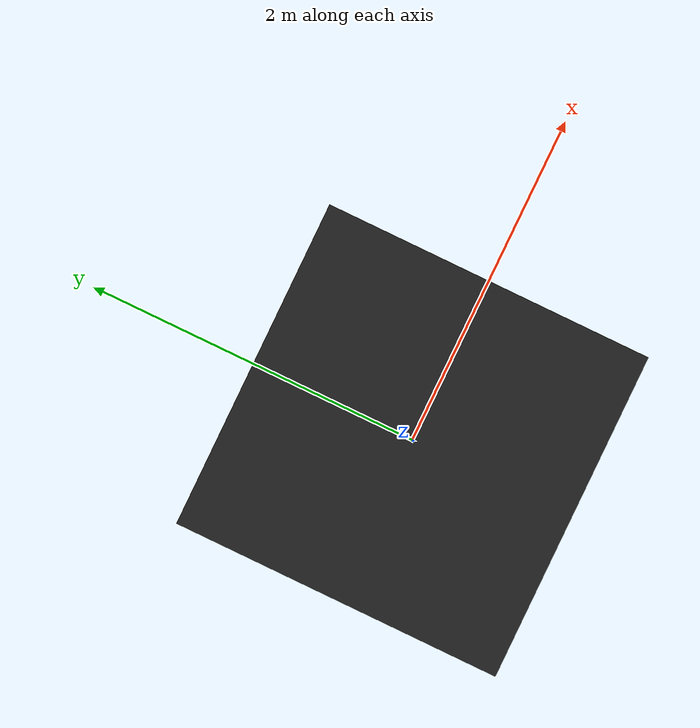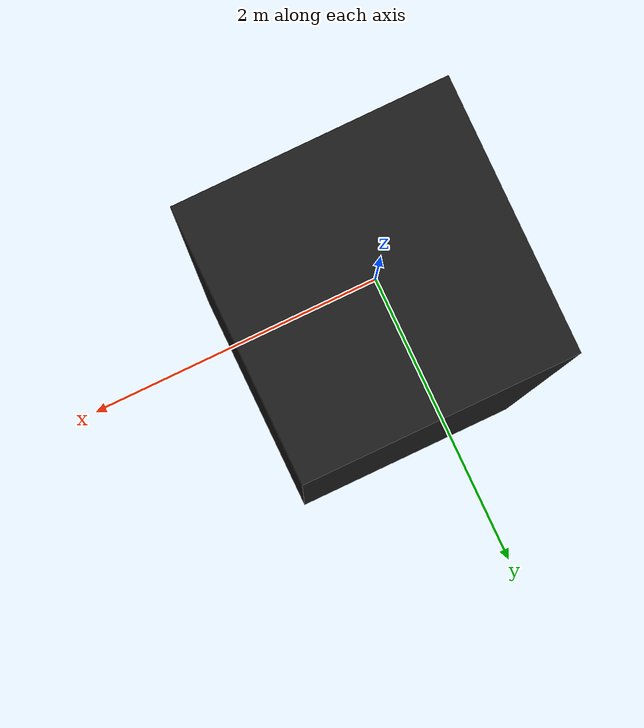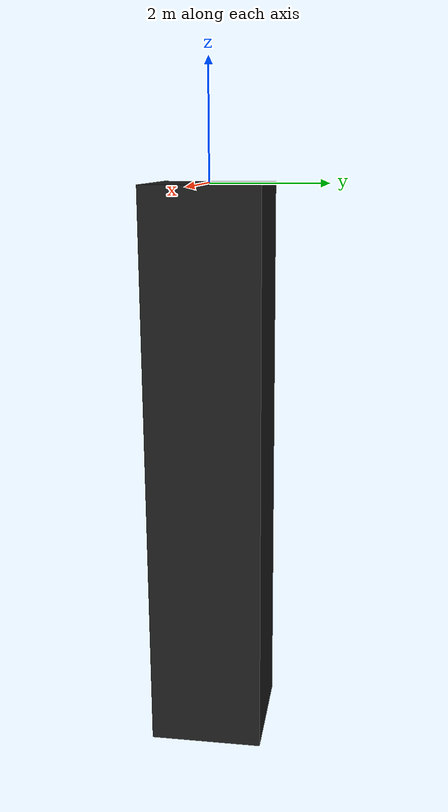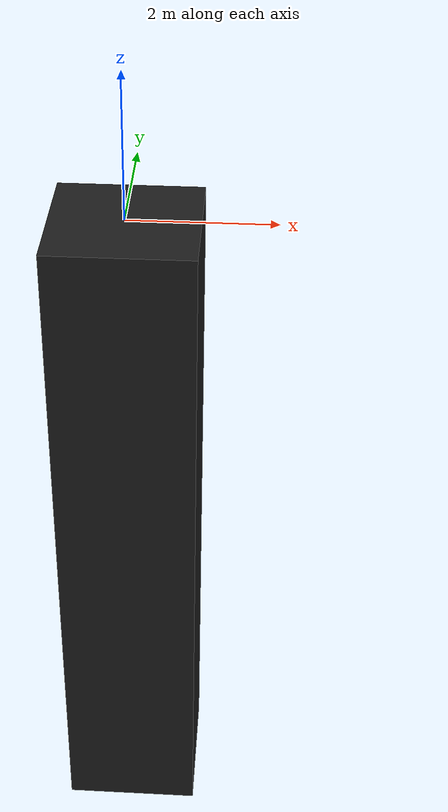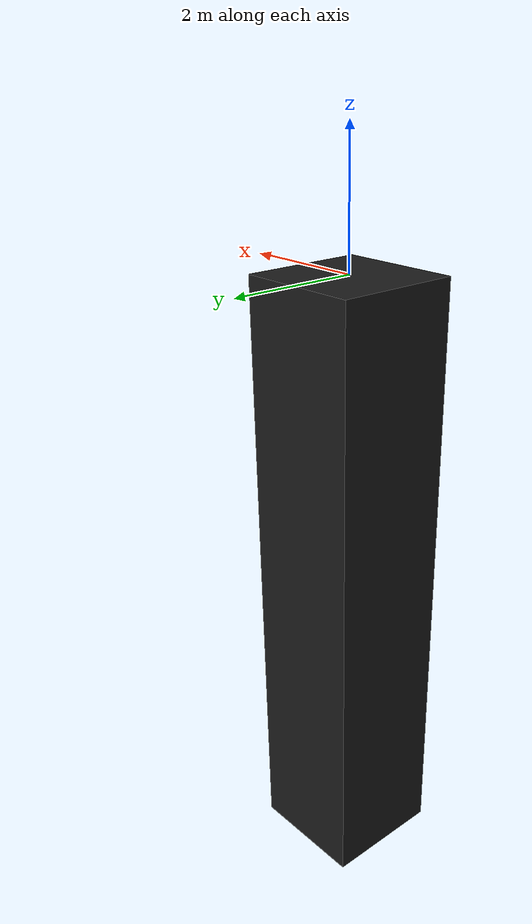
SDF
<?xml version="1.0" ?>
<sdf version='1.6'>
  <model name='ground'>
    <static>true</static>
    <pose> 0 0 -5 0 0 0</pose>
    <link name="link">
      <collision name="groundCollision">
        <geometry>
          <box>
            <size>2 2 10</size>
          </box>
        </geometry>
      </collision>
      <visual name="groundVisual">
        <geometry>-
          <box>
            <size>2 2 10</size>
          </box>
        </geometry>
        <material>
          <ambient>0.11 0.11 0.11 1</ambient>
          <diffuse>0.11 0.11 0.11 1</diffuse>
          <specular>0.11 0.11 0.11 1</specular>
          <emissive>0.11 0.11 0.11 1</emissive>
        </material>
      </visual>
    </link>
  </model>
</sdf>
